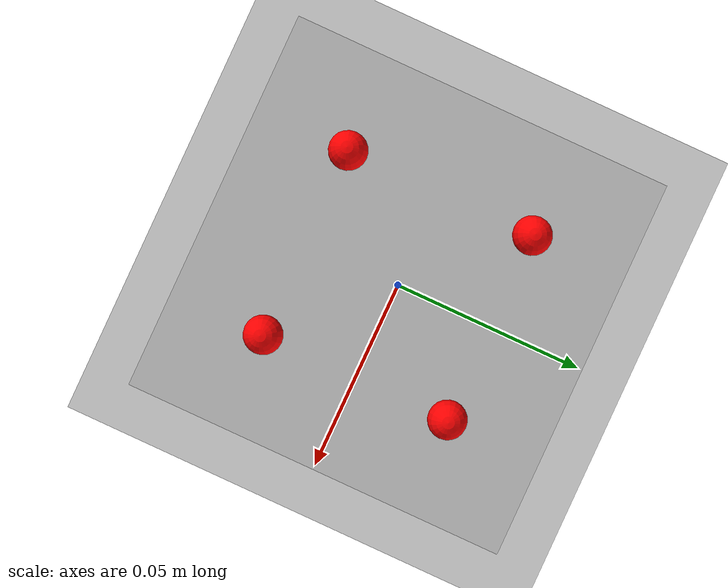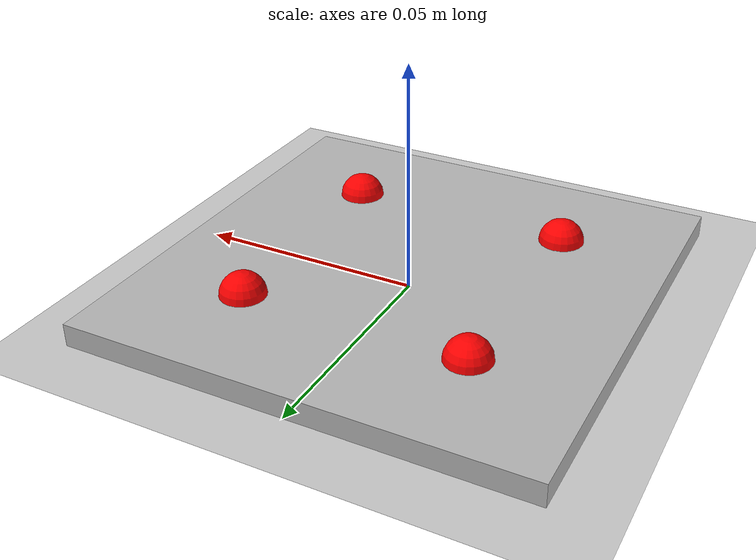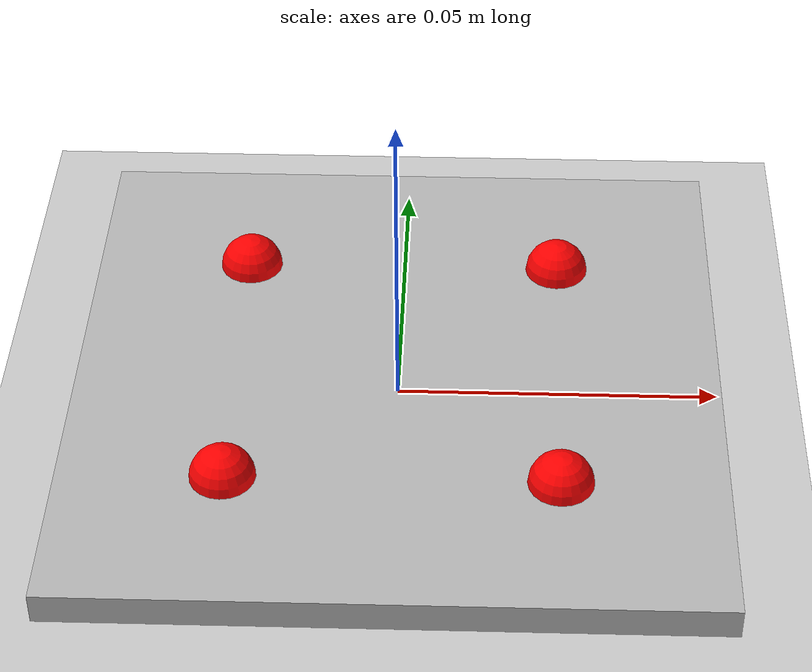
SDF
<sdf version="1.6">
 <world name="default">
  <include><uri>model://sun</uri></include>
  <include><uri>model://ground_plane</uri></include>
  <include><uri>model://ir_beacon</uri></include>
 </world>
</sdf>

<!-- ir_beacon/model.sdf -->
<sdf version="1.6">

<model name="ir_beacon">
  <static>true</static>
  <pose>0.0 0.0 0.0 0 0 0</pose>
  <link name="led_mount">
    <pose>0.0 0.0 0.0 0 0 0</pose>
    <visual name="visual">
      <pose>0.0 0.0 0.0025 0 0 0</pose>
      <geometry>
        <box>
          <size>0.1 0.1 0.005</size>
        </box>
      </geometry>
    </visual>
    <visual name="IR_LED_01">
      <pose>0.025 0.025 0.005 0 0 0</pose>
      <geometry>
        <sphere>
          <radius>0.005 0.005 0.005</radius>
        </sphere>
      </geometry>
      <material>
        <diffuse>1 0 0 1</diffuse>
      </material>
    </visual>
    <visual name="IR_LED_02">
      <pose>-0.025 0.025 0.005 0 0 0</pose>
      <geometry>
        <sphere>
          <radius>0.005 0.005 0.005</radius>
        </sphere>
      </geometry>
      <material>
        <diffuse>1 0 0 1</diffuse>
      </material>
    </visual>
    <visual name="IR_LED_03">
      <pose>-0.025 -0.025 0.005 0 0 0</pose>
      <geometry>
        <sphere>
          <radius>0.005 0.005 0.005</radius>
        </sphere>
      </geometry>
      <material>
        <diffuse>1 0 0 1</diffuse>
      </material>
    </visual>
    <visual name="IR_LED_04">
      <pose>0.025 -0.025 0.005 0 0 0</pose>
      <geometry>
        <sphere>
          <radius>0.005 0.005 0.005</radius>
        </sphere>
      </geometry>
      <material>
        <diffuse>1 0 0 1</diffuse>
      </material>
    </visual>
  </link>
</model>

</sdf>
